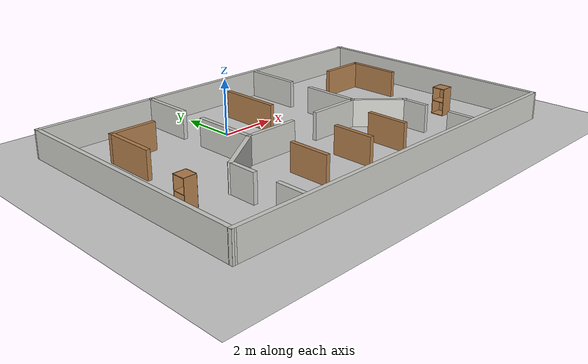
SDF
<sdf version="1.7">
 <world name="default">
  <light name="sun" type="directional">
   <pose>0 0 10 0 -0 0</pose>
   <diffuse>0.8 0.8 0.8 1</diffuse>
   <specular>0.2 0.2 0.2 1</specular>
   <attenuation>
    <range>1000</range>
    <constant>0.9</constant>
    <linear>0.01</linear>
    <quadratic>0.001</quadratic>
   </attenuation>
   <direction>-0.5 0.1 -0.9</direction>
   <spot><inner_angle>0</inner_angle><outer_angle>0</outer_angle><falloff>0</falloff></spot>
  </light>
  <model name="ground_plane">
   <static>1</static>
   <link name="link">
    <collision name="collision">
     <geometry><plane><normal>0 0 1</normal><size>100 100</size></plane></geometry>
     <surface>
      <contact><collide_bitmask>65535</collide_bitmask></contact>
      <friction><ode><mu>1</mu><mu2>1</mu2></ode></friction>
     </surface>
    </collision>
    <visual name="visual">
     <cast_shadows>0</cast_shadows>
     <geometry><plane><normal>0 0 1</normal><size>100 100</size></plane></geometry>
     <material>
      <script><uri>file://media/materials/scripts/gazebo.material</uri><name>Gazebo/Grey</name></script>
     </material>
    </visual>
   </link>
  </model>
  <gravity>0 0 -9.8</gravity>
  <magnetic_field>6e-06 2.3e-05 -4.2e-05</magnetic_field>
  <atmosphere type="adiabatic"/>
  <physics type="ode">
   <max_step_size>0.001</max_step_size>
   <real_time_factor>1</real_time_factor>
   <real_time_update_rate>1000</real_time_update_rate>
  </physics>
  <scene><ambient>0.4 0.4 0.4 1</ambient><background>0.7 0.7 0.7 1</background><shadows>1</shadows></scene>
  <spherical_coordinates>
   <surface_model>EARTH_WGS84</surface_model>
   <latitude_deg>0</latitude_deg>
   <longitude_deg>0</longitude_deg>
   <elevation>0</elevation>
   <heading_deg>0</heading_deg>
  </spherical_coordinates>
  <model name="ahmed_new_home">
   <pose>1.65758 -2.01539 0 0 -0 0</pose>
   <link name="Wall_11">
    <collision name="Wall_11_Collision">
     <geometry><box><size>2 0.15 1</size></box></geometry>
     <pose>0 0 0.5 0 -0 0</pose>
    </collision>
    <visual name="Wall_11_Visual">
     <pose>0 0 0.5 0 -0 0</pose>
     <geometry><box><size>2 0.15 1</size></box></geometry>
     <material>
      <script><uri>file://media/materials/scripts/gazebo.material</uri><name>Gazebo/CeilingTiled</name></script>
      <ambient>0.756863 0.490196 0.0666667 1</ambient>
     </material>
     <meta><layer>0</layer></meta>
    </visual>
    <pose>-1.94539 -0.519363 0 0 -0 0</pose>
   </link>
   <link name="Wall_18">
    <collision name="Wall_18_Collision">
     <geometry><box><size>1.5 0.15 1</size></box></geometry>
     <pose>0 0 0.5 0 -0 0</pose>
    </collision>
    <visual name="Wall_18_Visual">
     <pose>0 0 0.5 0 -0 0</pose>
     <geometry><box><size>1.5 0.15 1</size></box></geometry>
     <material>
      <script><uri>file://media/materials/scripts/gazebo.material</uri><name>Gazebo/Wood</name></script>
      <ambient>0.996078 0.47451 0.0196078 1</ambient>
     </material>
     <meta><layer>0</layer></meta>
    </visual>
    <pose>1.42261 -2.53136 0 0 -0 -1.5708</pose>
   </link>
   <link name="Wall_2">
    <collision name="Wall_2_Collision">
     <geometry><box><size>14.5053 0.15 1</size></box></geometry>
     <pose>0 0 0.5 0 -0 0</pose>
    </collision>
    <visual name="Wall_2_Visual">
     <pose>0 0 0.5 0 -0 0</pose>
     <geometry><box><size>14.5053 0.15 1</size></box></geometry>
     <material>
      <script><uri>file://media/materials/scripts/gazebo.material</uri><name>Gazebo/CeilingTiled</name></script>
      <ambient>0.180392 0.203922 0.211765 1</ambient>
     </material>
     <meta><layer>0</layer></meta>
    </visual>
    <pose>-0.010392 -4.67486 0 0 -0 -3.1379</pose>
   </link>
   <link name="Wall_21">
    <collision name="Wall_21_Collision">
     <geometry><box><size>1.5 0.15 1</size></box></geometry>
     <pose>0 0 0.5 0 -0 0</pose>
    </collision>
    <visual name="Wall_21_Visual">
     <pose>0 0 0.5 0 -0 0</pose>
     <geometry><box><size>1.5 0.15 1</size></box></geometry>
     <material>
      <script><uri>file://media/materials/scripts/gazebo.material</uri><name>Gazebo/Wood</name></script>
      <ambient>0.996078 0.47451 0.0196078 1</ambient>
     </material>
     <meta><layer>0</layer></meta>
    </visual>
    <pose>-2.29839 -2.55136 0 0 -0 -1.5708</pose>
   </link>
   <link name="Wall_23">
    <collision name="Wall_23_Collision">
     <geometry><box><size>1.5 0.15 1</size></box></geometry>
     <pose>0 0 0.5 0 -0 0</pose>
    </collision>
    <visual name="Wall_23_Visual">
     <pose>0 0 0.5 0 -0 0</pose>
     <geometry><box><size>1.5 0.15 1</size></box></geometry>
     <material>
      <script><uri>file://media/materials/scripts/gazebo.material</uri><name>Gazebo/Wood</name></script>
      <ambient>0.996078 0.47451 0.0196078 1</ambient>
     </material>
     <meta><layer>0</layer></meta>
    </visual>
    <pose>-0.306392 -2.55136 0 0 -0 -1.5708</pose>
   </link>
   <link name="Wall_25">
    <collision name="Wall_25_Collision">
     <geometry><box><size>2 0.15 1</size></box></geometry>
     <pose>0 0 0.5 0 -0 0</pose>
    </collision>
    <visual name="Wall_25_Visual">
     <pose>0 0 0.5 0 -0 0</pose>
     <geometry><box><size>2 0.15 1</size></box></geometry>
     <material>
      <script><uri>file://media/materials/scripts/gazebo.material</uri><name>Gazebo/CeilingTiled</name></script>
      <ambient>0.756863 0.490196 0.0666667 1</ambient>
     </material>
     <meta><layer>0</layer></meta>
    </visual>
    <pose>1.10061 -0.488363 0 0 -0 0</pose>
   </link>
   <link name="Wall_28">
    <collision name="Wall_28_Collision">
     <geometry><box><size>2.25 0.15 1</size></box></geometry>
     <pose>0 0 0.5 0 -0 0</pose>
    </collision>
    <visual name="Wall_28_Visual">
     <pose>0 0 0.5 0 -0 0</pose>
     <geometry><box><size>2.25 0.15 1</size></box></geometry>
     <material>
      <script><uri>file://media/materials/scripts/gazebo.material</uri><name>Gazebo/Wood</name></script>
      <ambient>0.996078 0.47451 0.0196078 1</ambient>
     </material>
     <meta><layer>0</layer></meta>
    </visual>
    <pose>-0.361392 2.21964 0 0 -0 1.5708</pose>
   </link>
   <link name="Wall_30">
    <pose>-4.61839 -3.11736 0 0 -0 -1.5708</pose>
    <visual name="Wall_30_Visual_0">
     <pose>-0.955994 0 0.5 0 -0 0</pose>
     <geometry><box><size>1.08801 0.15 1</size></box></geometry>
     <material>
      <script><uri>file://media/materials/scripts/gazebo.material</uri><name>Gazebo/CeilingTiled</name></script>
      <ambient>0.756863 0.490196 0.0666667 1</ambient>
     </material>
     <meta><layer>0</layer></meta>
    </visual>
    <collision name="Wall_30_Collision_0">
     <geometry><box><size>1.08801 0.15 1</size></box></geometry>
     <pose>-0.955994 0 0.5 0 -0 0</pose>
    </collision>
    <visual name="Wall_30_Visual_1">
     <pose>0.994006 0 0.5 0 -0 0</pose>
     <geometry><box><size>1.01199 0.15 1</size></box></geometry>
     <material>
      <script><uri>file://media/materials/scripts/gazebo.material</uri><name>Gazebo/CeilingTiled</name></script>
      <ambient>0.756863 0.490196 0.0666667 1</ambient>
     </material>
     <meta><layer>0</layer></meta>
    </visual>
    <collision name="Wall_30_Collision_1">
     <geometry><box><size>1.01199 0.15 1</size></box></geometry>
     <pose>0.994006 0 0.5 0 -0 0</pose>
    </collision>
   </link>
   <link name="Wall_32">
    <collision name="Wall_32_Collision">
     <geometry><box><size>2.25509 0.15 1</size></box></geometry>
     <pose>0 0 0.5 0 -0 0</pose>
    </collision>
    <visual name="Wall_32_Visual">
     <pose>0 0 0.5 0 -0 0</pose>
     <geometry><box><size>2.25509 0.15 1</size></box></geometry>
     <material>
      <script><uri>file://media/materials/scripts/gazebo.material</uri><name>Gazebo/CeilingTiled</name></script>
      <ambient>0.756863 0.490196 0.0666667 1</ambient>
     </material>
     <meta><layer>0</layer></meta>
    </visual>
    <pose>-3.74439 -1.10586 0 0 -0 0.591033</pose>
   </link>
   <link name="Wall_33">
    <pose>-2.87039 2.03064 0 0 -0 1.5708</pose>
    <visual name="Wall_33_Visual_0">
     <pose>-1.41739 0 0.5 0 -0 0</pose>
     <geometry><box><size>2.41522 0.15 1</size></box></geometry>
     <material>
      <script><uri>file://media/materials/scripts/gazebo.material</uri><name>Gazebo/CeilingTiled</name></script>
      <ambient>0.756863 0.490196 0.0666667 1</ambient>
     </material>
     <meta><layer>0</layer></meta>
    </visual>
    <collision name="Wall_33_Collision_0">
     <geometry><box><size>2.41522 0.15 1</size></box></geometry>
     <pose>-1.41739 0 0.5 0 -0 0</pose>
    </collision>
    <visual name="Wall_33_Visual_1">
     <pose>1.65761 0 0.5 0 -0 0</pose>
     <geometry><box><size>1.93478 0.15 1</size></box></geometry>
     <material>
      <script><uri>file://media/materials/scripts/gazebo.material</uri><name>Gazebo/CeilingTiled</name></script>
      <ambient>0.756863 0.490196 0.0666667 1</ambient>
     </material>
     <meta><layer>0</layer></meta>
    </visual>
    <collision name="Wall_33_Collision_1">
     <geometry><box><size>1.93478 0.15 1</size></box></geometry>
     <pose>1.65761 0 0.5 0 -0 0</pose>
    </collision>
   </link>
   <link name="Wall_35">
    <collision name="Wall_35_Collision">
     <geometry><box><size>2 0.15 1</size></box></geometry>
     <pose>0 0 0.5 0 -0 0</pose>
    </collision>
    <visual name="Wall_35_Visual">
     <pose>0 0 0.5 0 -0 0</pose>
     <geometry><box><size>2 0.15 1</size></box></geometry>
     <material>
      <script><uri>file://media/materials/scripts/gazebo.material</uri><name>Gazebo/CeilingTiled</name></script>
      <ambient>0.756863 0.490196 0.0666667 1</ambient>
     </material>
     <meta><layer>0</layer></meta>
    </visual>
    <pose>2.68011 -1.14236 0 0 -0 -0.785016</pose>
   </link>
   <link name="Wall_36">
    <pose>3.33461 -3.22136 0 0 -0 -1.5708</pose>
    <visual name="Wall_36_Visual_0">
     <pose>-0.99459 0 0.5 0 -0 0</pose>
     <geometry><box><size>1.01082 0.15 1</size></box></geometry>
     <material>
      <script><uri>file://media/materials/scripts/gazebo.material</uri><name>Gazebo/CeilingTiled</name></script>
      <ambient>0.756863 0.490196 0.0666667 1</ambient>
     </material>
     <meta><layer>0</layer></meta>
    </visual>
    <collision name="Wall_36_Collision_0">
     <geometry><box><size>1.01082 0.15 1</size></box></geometry>
     <pose>-0.99459 0 0.5 0 -0 0</pose>
    </collision>
    <visual name="Wall_36_Visual_1">
     <pose>0.95541 0 0.5 0 -0 0</pose>
     <geometry><box><size>1.08918 0.15 1</size></box></geometry>
     <material>
      <script><uri>file://media/materials/scripts/gazebo.material</uri><name>Gazebo/CeilingTiled</name></script>
      <ambient>0.756863 0.490196 0.0666667 1</ambient>
     </material>
     <meta><layer>0</layer></meta>
    </visual>
    <collision name="Wall_36_Collision_1">
     <geometry><box><size>1.08918 0.15 1</size></box></geometry>
     <pose>0.95541 0 0.5 0 -0 0</pose>
    </collision>
   </link>
   <link name="Wall_38">
    <collision name="Wall_38_Collision">
     <geometry><box><size>14.5 0.15 1</size></box></geometry>
     <pose>0 0 0.5 0 -0 0</pose>
    </collision>
    <visual name="Wall_38_Visual">
     <pose>0 0 0.5 0 -0 0</pose>
     <geometry><box><size>14.5 0.15 1</size></box></geometry>
     <material>
      <script><uri>file://media/materials/scripts/gazebo.material</uri><name>Gazebo/CeilingTiled</name></script>
      <ambient>0.180392 0.203922 0.211765 1</ambient>
     </material>
     <meta><layer>0</layer></meta>
    </visual>
    <pose>0.013608 4.64864 0 0 -0 3.14159</pose>
   </link>
   <link name="Wall_39">
    <collision name="Wall_39_Collision">
     <geometry><box><size>9.5 0.15 1</size></box></geometry>
     <pose>0 0 0.5 0 -0 0</pose>
    </collision>
    <visual name="Wall_39_Visual">
     <pose>0 0 0.5 0 -0 0</pose>
     <geometry><box><size>9.5 0.15 1</size></box></geometry>
     <material>
      <script><uri>file://media/materials/scripts/gazebo.material</uri><name>Gazebo/CeilingTiled</name></script>
      <ambient>0.180392 0.203922 0.211765 1</ambient>
     </material>
     <meta><layer>0</layer></meta>
    </visual>
    <pose>-7.17489 -0.026363 0 0 -0 -1.57368</pose>
   </link>
   <link name="Wall_41">
    <collision name="Wall_41_Collision">
     <geometry><box><size>9.5 0.15 1</size></box></geometry>
     <pose>0 0 0.5 0 -0 0</pose>
    </collision>
    <visual name="Wall_41_Visual">
     <pose>0 0 0.5 0 -0 0</pose>
     <geometry><box><size>9.5 0.15 1</size></box></geometry>
     <material>
      <script><uri>file://media/materials/scripts/gazebo.material</uri><name>Gazebo/CeilingTiled</name></script>
      <ambient>0.180392 0.203922 0.211765 1</ambient>
     </material>
     <meta><layer>0</layer></meta>
    </visual>
    <pose>7.16761 0.026637 0 0 -0 1.5708</pose>
   </link>
   <link name="Wall_44">
    <pose>2.02561 2.06164 0 0 -0 1.5708</pose>
    <visual name="Wall_44_Visual_0">
     <pose>-1.53936 0 0.5 0 -0 0</pose>
     <geometry><box><size>2.17127 0.15 1</size></box></geometry>
     <material>
      <script><uri>file://media/materials/scripts/gazebo.material</uri><name>Gazebo/CeilingTiled</name></script>
      <ambient>0.756863 0.490196 0.0666667 1</ambient>
     </material>
     <meta><layer>0</layer></meta>
    </visual>
    <collision name="Wall_44_Collision_0">
     <geometry><box><size>2.17127 0.15 1</size></box></geometry>
     <pose>-1.53936 0 0.5 0 -0 0</pose>
    </collision>
    <visual name="Wall_44_Visual_1">
     <pose>1.53564 0 0.5 0 -0 0</pose>
     <geometry><box><size>2.17873 0.15 1</size></box></geometry>
     <material>
      <script><uri>file://media/materials/scripts/gazebo.material</uri><name>Gazebo/CeilingTiled</name></script>
      <ambient>0.756863 0.490196 0.0666667 1</ambient>
     </material>
     <meta><layer>0</layer></meta>
    </visual>
    <collision name="Wall_44_Collision_1">
     <geometry><box><size>2.17873 0.15 1</size></box></geometry>
     <pose>1.53564 0 0.5 0 -0 0</pose>
    </collision>
   </link>
   <link name="Wall_46">
    <collision name="Wall_46_Collision">
     <geometry><box><size>1.75 0.15 1</size></box></geometry>
     <pose>0 0 0.5 0 -0 0</pose>
    </collision>
    <visual name="Wall_46_Visual">
     <pose>0 0 0.5 0 -0 0</pose>
     <geometry><box><size>1.75 0.15 1</size></box></geometry>
     <material>
      <script><uri>file://media/materials/scripts/gazebo.material</uri><name>Gazebo/Wood</name></script>
      <ambient>0.996078 0.47451 0.0196078 1</ambient>
     </material>
     <meta><layer>0</layer></meta>
    </visual>
    <pose>4.90661 2.50964 0 0 -0 0</pose>
   </link>
   <link name="Wall_47">
    <collision name="Wall_47_Collision">
     <geometry><box><size>2 0.15 1</size></box></geometry>
     <pose>0 0 0.5 0 -0 0</pose>
    </collision>
    <visual name="Wall_47_Visual">
     <pose>0 0 0.5 0 -0 0</pose>
     <geometry><box><size>2 0.15 1</size></box></geometry>
     <material>
      <script><uri>file://media/materials/scripts/gazebo.material</uri><name>Gazebo/Wood</name></script>
      <ambient>0.996078 0.47451 0.0196078 1</ambient>
     </material>
     <meta><layer>0</layer></meta>
    </visual>
    <pose>5.70661 1.58464 0 0 -0 -1.5708</pose>
   </link>
   <link name="Wall_49">
    <collision name="Wall_49_Collision">
     <geometry><box><size>1.6596 0.15 1</size></box></geometry>
     <pose>0 0 0.5 0 -0 0</pose>
    </collision>
    <visual name="Wall_49_Visual">
     <pose>0 0 0.5 0 -0 0</pose>
     <geometry><box><size>1.6596 0.15 1</size></box></geometry>
     <material>
      <script><uri>file://media/materials/scripts/gazebo.material</uri><name>Gazebo/Wood</name></script>
      <ambient>0.996078 0.47451 0.0196078 1</ambient>
     </material>
     <meta><layer>0</layer></meta>
    </visual>
    <pose>-4.97389 2.66964 0 0 -0 3.14159</pose>
   </link>
   <link name="Wall_50">
    <collision name="Wall_50_Collision">
     <geometry><box><size>2 0.15 1</size></box></geometry>
     <pose>0 0 0.5 0 -0 0</pose>
    </collision>
    <visual name="Wall_50_Visual">
     <pose>0 0 0.5 0 -0 0</pose>
     <geometry><box><size>2 0.15 1</size></box></geometry>
     <material>
      <script><uri>file://media/materials/scripts/gazebo.material</uri><name>Gazebo/Wood</name></script>
      <ambient>0.996078 0.47451 0.0196078 1</ambient>
     </material>
     <meta><layer>0</layer></meta>
    </visual>
    <pose>-5.72839 1.74464 0 0 -0 -1.5708</pose>
   </link>
   <static>1</static>
  </model>
  <model name="cabinet_0">
   <static>1</static>
   <link name="cabinet_bottom_plate">
    <inertial>
     <pose>0 0 -1 0 -0 0</pose>
     <inertia><ixx>2.05</ixx><ixy>0</ixy><ixz>0</ixz><iyy>2.05</iyy><iyz>0</iyz><izz>2.05</izz></inertia>
     <mass>25</mass>
    </inertial>
    <collision name="cabinet_bottom_plate_geom">
     <pose>0 0 0.01 0 -0 0</pose>
     <geometry><box><size>0.45 0.45 0.02</size></box></geometry>
    </collision>
    <visual name="cabinet_bottom_plate_geom_visual">
     <pose>0 0 0.01 0 -0 0</pose>
     <geometry><box><size>0.45 0.45 0.02</size></box></geometry>
     <material>
      <script><uri>file://media/materials/scripts/gazebo.material</uri><name>Gazebo/Wood</name></script>
     </material>
    </visual>
    <collision name="cabinet_bottom_plate_geom_cabinet_back_plate">
     <pose>0.235 0 0.51 0 -0 0</pose>
     <geometry><box><size>0.02 0.45 1.02</size></box></geometry>
    </collision>
    <visual name="cabinet_bottom_plate_geom_cabinet_back_plate_visual">
     <pose>0.235 0 0.51 0 -0 0</pose>
     <geometry><box><size>0.02 0.45 1.02</size></box></geometry>
     <material>
      <script><uri>file://media/materials/scripts/gazebo.material</uri><name>Gazebo/Wood</name></script>
     </material>
    </visual>
    <collision name="cabinet_bottom_plate_geom_cabinet_left_plate">
     <pose>0 0.235 0.51 0 -0 0</pose>
     <geometry><box><size>0.45 0.02 1.02</size></box></geometry>
    </collision>
    <visual name="cabinet_bottom_plate_geom_cabinet_left_plate_visual">
     <pose>0 0.235 0.51 0 -0 0</pose>
     <geometry><box><size>0.45 0.02 1.02</size></box></geometry>
     <material>
      <script><uri>file://media/materials/scripts/gazebo.material</uri><name>Gazebo/Wood</name></script>
     </material>
    </visual>
    <collision name="cabinet_bottom_plate_geom_cabinet_middle_plate">
     <pose>0 0 0.51 0 -0 0</pose>
     <geometry><box><size>0.45 0.45 0.02</size></box></geometry>
    </collision>
    <visual name="cabinet_bottom_plate_geom_cabinet_middle_plate_visual">
     <pose>0 0 0.51 0 -0 0</pose>
     <geometry><box><size>0.45 0.45 0.02</size></box></geometry>
     <material>
      <script><uri>file://media/materials/scripts/gazebo.material</uri><name>Gazebo/Wood</name></script>
     </material>
    </visual>
    <collision name="cabinet_bottom_plate_geom_cabinet_right_plate">
     <pose>0 -0.235 0.51 0 -0 0</pose>
     <geometry><box><size>0.45 0.02 1.02</size></box></geometry>
    </collision>
    <visual name="cabinet_bottom_plate_geom_cabinet_right_plate_visual">
     <pose>0 -0.235 0.51 0 -0 0</pose>
     <geometry><box><size>0.45 0.02 1.02</size></box></geometry>
     <material>
      <script><uri>file://media/materials/scripts/gazebo.material</uri><name>Gazebo/Wood</name></script>
     </material>
    </visual>
    <collision name="cabinet_bottom_plate_geom_cabinet_top_plate">
     <pose>0 0 1.01 0 -0 0</pose>
     <geometry><box><size>0.45 0.45 0.02</size></box></geometry>
    </collision>
    <visual name="cabinet_bottom_plate_geom_cabinet_top_plate_visual">
     <pose>0 0 1.01 0 -0 0</pose>
     <geometry><box><size>0.45 0.45 0.02</size></box></geometry>
     <material>
      <script><uri>file://media/materials/scripts/gazebo.material</uri><name>Gazebo/Wood</name></script>
     </material>
    </visual>
   </link>
   <pose>-4.41467 -3.4644 0 0 -0 0</pose>
  </model>
  <model name="cabinet_0_clone">
   <static>1</static>
   <link name="cabinet_bottom_plate">
    <inertial>
     <pose>0 0 -1 0 -0 0</pose>
     <inertia><ixx>2.05</ixx><ixy>0</ixy><ixz>0</ixz><iyy>2.05</iyy><iyz>0</iyz><izz>2.05</izz></inertia>
     <mass>25</mass>
    </inertial>
    <collision name="cabinet_bottom_plate_geom">
     <pose>0 0 0.01 0 -0 0</pose>
     <geometry><box><size>0.45 0.45 0.02</size></box></geometry>
    </collision>
    <visual name="cabinet_bottom_plate_geom_visual">
     <pose>0 0 0.01 0 -0 0</pose>
     <geometry><box><size>0.45 0.45 0.02</size></box></geometry>
     <material>
      <script><uri>file://media/materials/scripts/gazebo.material</uri><name>Gazebo/Wood</name></script>
     </material>
    </visual>
    <collision name="cabinet_bottom_plate_geom_cabinet_back_plate">
     <pose>0.235 0 0.51 0 -0 0</pose>
     <geometry><box><size>0.02 0.45 1.02</size></box></geometry>
    </collision>
    <visual name="cabinet_bottom_plate_geom_cabinet_back_plate_visual">
     <pose>0.235 0 0.51 0 -0 0</pose>
     <geometry><box><size>0.02 0.45 1.02</size></box></geometry>
     <material>
      <script><uri>file://media/materials/scripts/gazebo.material</uri><name>Gazebo/Wood</name></script>
     </material>
    </visual>
    <collision name="cabinet_bottom_plate_geom_cabinet_left_plate">
     <pose>0 0.235 0.51 0 -0 0</pose>
     <geometry><box><size>0.45 0.02 1.02</size></box></geometry>
    </collision>
    <visual name="cabinet_bottom_plate_geom_cabinet_left_plate_visual">
     <pose>0 0.235 0.51 0 -0 0</pose>
     <geometry><box><size>0.45 0.02 1.02</size></box></geometry>
     <material>
      <script><uri>file://media/materials/scripts/gazebo.material</uri><name>Gazebo/Wood</name></script>
     </material>
    </visual>
    <collision name="cabinet_bottom_plate_geom_cabinet_middle_plate">
     <pose>0 0 0.51 0 -0 0</pose>
     <geometry><box><size>0.45 0.45 0.02</size></box></geometry>
    </collision>
    <visual name="cabinet_bottom_plate_geom_cabinet_middle_plate_visual">
     <pose>0 0 0.51 0 -0 0</pose>
     <geometry><box><size>0.45 0.45 0.02</size></box></geometry>
     <material>
      <script><uri>file://media/materials/scripts/gazebo.material</uri><name>Gazebo/Wood</name></script>
     </material>
    </visual>
    <collision name="cabinet_bottom_plate_geom_cabinet_right_plate">
     <pose>0 -0.235 0.51 0 -0 0</pose>
     <geometry><box><size>0.45 0.02 1.02</size></box></geometry>
    </collision>
    <visual name="cabinet_bottom_plate_geom_cabinet_right_plate_visual">
     <pose>0 -0.235 0.51 0 -0 0</pose>
     <geometry><box><size>0.45 0.02 1.02</size></box></geometry>
     <material>
      <script><uri>file://media/materials/scripts/gazebo.material</uri><name>Gazebo/Wood</name></script>
     </material>
    </visual>
    <collision name="cabinet_bottom_plate_geom_cabinet_top_plate">
     <pose>0 0 1.01 0 -0 0</pose>
     <geometry><box><size>0.45 0.45 0.02</size></box></geometry>
    </collision>
    <visual name="cabinet_bottom_plate_geom_cabinet_top_plate_visual">
     <pose>0 0 1.01 0 -0 0</pose>
     <geometry><box><size>0.45 0.45 0.02</size></box></geometry>
     <material>
      <script><uri>file://media/materials/scripts/gazebo.material</uri><name>Gazebo/Wood</name></script>
     </material>
    </visual>
   </link>
   <pose>7.02751 -3.97145 0 0 -0 0</pose>
  </model>
 </world>
</sdf>
